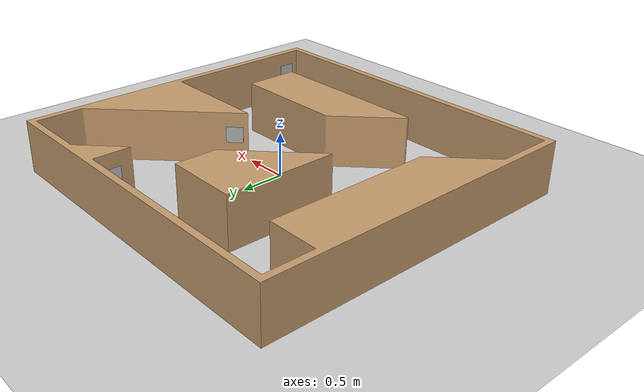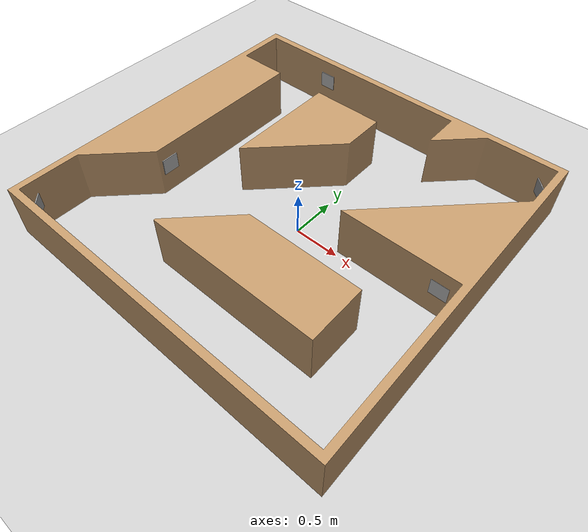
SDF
<sdf version="1.7">
 <world name="default">
  <light name="sun" type="directional">
   <pose>0 0 10 0 -0 0</pose>
   <diffuse>0.8 0.8 0.8 1</diffuse>
   <specular>0.2 0.2 0.2 1</specular>
   <attenuation>
    <range>1000</range>
    <constant>0.9</constant>
    <linear>0.01</linear>
    <quadratic>0.001</quadratic>
   </attenuation>
   <direction>-0.5 0.1 -0.9</direction>
   <spot><inner_angle>0</inner_angle><outer_angle>0</outer_angle><falloff>0</falloff></spot>
  </light>
  <model name="ground_plane">
   <static>1</static>
   <link name="link">
    <collision name="collision">
     <geometry><plane><normal>0 0 1</normal><size>100 100</size></plane></geometry>
     <surface><friction><ode><mu>100</mu><mu2>50</mu2></ode></friction></surface>
    </collision>
    <visual name="visual">
     <cast_shadows>0</cast_shadows>
     <geometry><plane><normal>0 0 1</normal><size>100 100</size></plane></geometry>
     <material>
      <script><uri>file://media/materials/scripts/gazebo.material</uri><name>Gazebo/Grey</name></script>
     </material>
    </visual>
   </link>
  </model>
  <gravity>0 0 -9.8</gravity>
  <magnetic_field>6e-06 2.3e-05 -4.2e-05</magnetic_field>
  <atmosphere type="adiabatic"/>
  <physics type="ode">
   <max_step_size>0.001</max_step_size>
   <real_time_factor>1</real_time_factor>
   <real_time_update_rate>1000</real_time_update_rate>
  </physics>
  <scene><ambient>0.4 0.4 0.4 1</ambient><background>0.7 0.7 0.7 1</background><shadows>1</shadows></scene>
  <audio><device>default</device></audio>
  <spherical_coordinates>
   <surface_model>EARTH_WGS84</surface_model>
   <latitude_deg>0</latitude_deg>
   <longitude_deg>0</longitude_deg>
   <elevation>0</elevation>
   <heading_deg>0</heading_deg>
  </spherical_coordinates>
  <model name="tic_field">
   <static>1</static>
   <link name="link">
    <collision name="collision">
     <geometry><mesh><uri>model:///tic_field/meshes/tic_field.STL</uri><scale>1 1 1</scale></mesh></geometry>
    </collision>
    <visual name="visual">
     <geometry><mesh><uri>model://tic_field/meshes/tic_field.STL</uri><scale>1 1 1</scale></mesh></geometry>
     <material><ambient>0.76 0.6 0.42 1</ambient><diffuse>0.76 0.6 0.42 1</diffuse></material>
    </visual>
   </link>
  </model>
  <model name="Apriltag16_5_00005">
   <link name="main">
    <visual name="main_Visual">
     <geometry><box><size>0.1875 0.1875 0.01</size></box></geometry>
     <material>
      <script>
       <uri>model://Apriltag16_05_00005/materials/scripts</uri>
       <uri>model://Apriltag16_05_00005/materials/textures</uri>
       <name>Apriltag16_05_00005</name>
      </script>
     </material>
    </visual>
   </link>
   <static>1</static>
   <pose>-1.94391 -1.68 0.341031 -1.57 -0 -0.78</pose>
  </model>
  <model name="Apriltag16_5_00008">
   <link name="main">
    <visual name="main_Visual">
     <geometry><box><size>0.1875 0.1875 0.01</size></box></geometry>
     <material>
      <script>
       <uri>model://Apriltag16_05_00008/materials/scripts</uri>
       <uri>model://Apriltag16_05_00008/materials/textures</uri>
       <name>Apriltag16_05_00008</name>
      </script>
     </material>
    </visual>
   </link>
   <static>1</static>
   <pose>1.67886 1.80405 0.34 -2.86974 -1.51692 -2.65506</pose>
  </model>
  <model name="Apriltag16_5_00003">
   <link name="main">
    <visual name="main_Visual">
     <geometry><box><size>0.1875 0.1875 0.01</size></box></geometry>
     <material>
      <script>
       <uri>model://Apriltag16_05_00003/materials/scripts</uri>
       <uri>model://Apriltag16_05_00003/materials/textures</uri>
       <name>Apriltag16_05_00003</name>
      </script>
     </material>
    </visual>
   </link>
   <static>1</static>
   <pose>-1.44608 -0.402355 0.339904 1.3968 -1.57 1.74479</pose>
  </model>
  <model name="Apriltag16_5_00004">
   <link name="main">
    <visual name="main_Visual">
     <geometry><box><size>0.1875 0.1875 0.01</size></box></geometry>
     <material>
      <script>
       <uri>model://Apriltag16_05_00004/materials/scripts</uri>
       <uri>model://Apriltag16_05_00004/materials/textures</uri>
       <name>Apriltag16_05_00004</name>
      </script>
     </material>
    </visual>
   </link>
   <static>1</static>
   <pose>-1.15427 1.88676 0.340138 -1.57 0 0</pose>
  </model>
  <model name="Apriltag16_5_00000">
   <link name="main">
    <visual name="main_Visual">
     <geometry><box><size>0.1875 0.1875 0.01</size></box></geometry>
     <material>
      <script>
       <uri>model://Apriltag16_05_00001/materials/scripts</uri>
       <uri>model://Apriltag16_05_00001/materials/textures</uri>
       <name>Apriltag16_05_00001</name>
      </script>
     </material>
    </visual>
   </link>
   <static>1</static>
   <pose>0.54039 1.69371 0.34 0 -1.5375 0</pose>
  </model>
  <model name="Apriltag16_5_00002">
   <link name="main">
    <visual name="main_Visual">
     <geometry><box><size>0.1875 0.1875 0.01</size></box></geometry>
     <material>
      <script>
       <uri>model://Apriltag16_05_00002/materials/scripts</uri>
       <uri>model://Apriltag16_05_00002/materials/textures</uri>
       <name>Apriltag16_05_00002</name>
      </script>
     </material>
    </visual>
   </link>
   <static>1</static>
   <pose>0.57393 0.168249 0.34 -3.14159 -1.51028 2.35326</pose>
  </model>
  <model name="Apriltag16_5_00007">
   <link name="main">
    <visual name="main_Visual">
     <geometry><box><size>0.1875 0.1875 0.01</size></box></geometry>
     <material>
      <script>
       <uri>model://Apriltag16_05_00007/materials/scripts</uri>
       <uri>model://Apriltag16_05_00007/materials/textures</uri>
       <name>Apriltag16_05_00007</name>
      </script>
     </material>
    </visual>
   </link>
   <static>1</static>
   <pose>1.57765 0.059438 0.339894 -2.4e-05 -1.57 1.57002</pose>
  </model>
  <model name="Apriltag16_5_00006">
   <link name="main">
    <visual name="main_Visual">
     <geometry><box><size>0.1875 0.1875 0.01</size></box></geometry>
     <material>
      <script>
       <uri>model://Apriltag16_05_00006/materials/scripts</uri>
       <uri>model://Apriltag16_05_00006/materials/textures</uri>
       <name>Apriltag16_05_00006</name>
      </script>
     </material>
    </visual>
   </link>
   <static>1</static>
   <pose>1.75587 -1.5914 0.34014 -3.14159 -1.57 -3.14159</pose>
  </model>
 </world>
</sdf>
